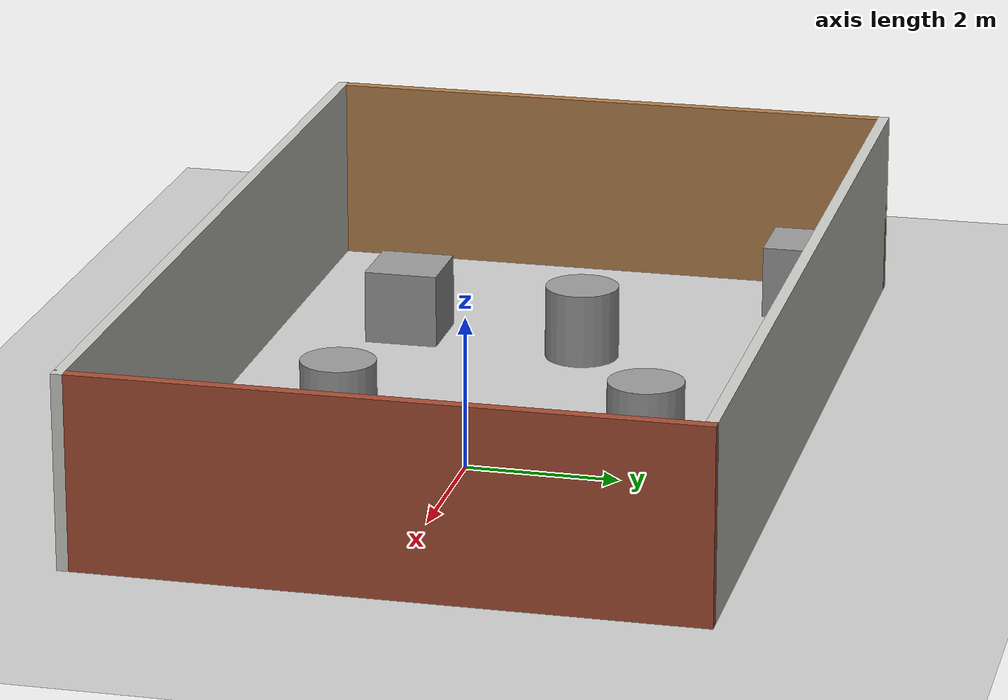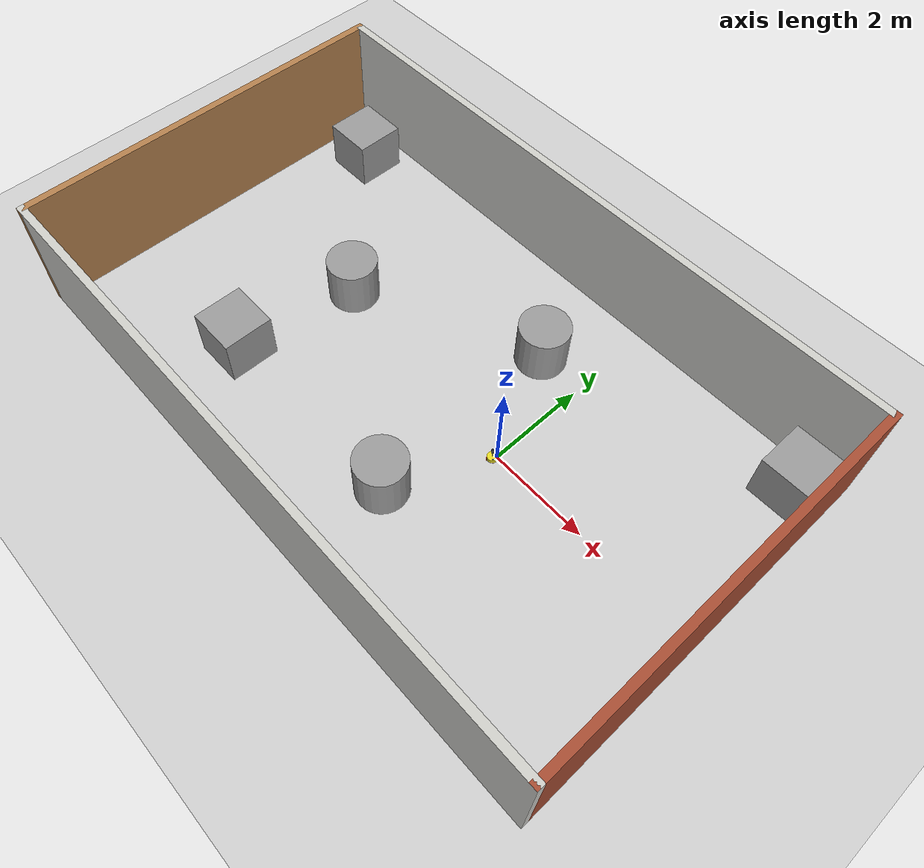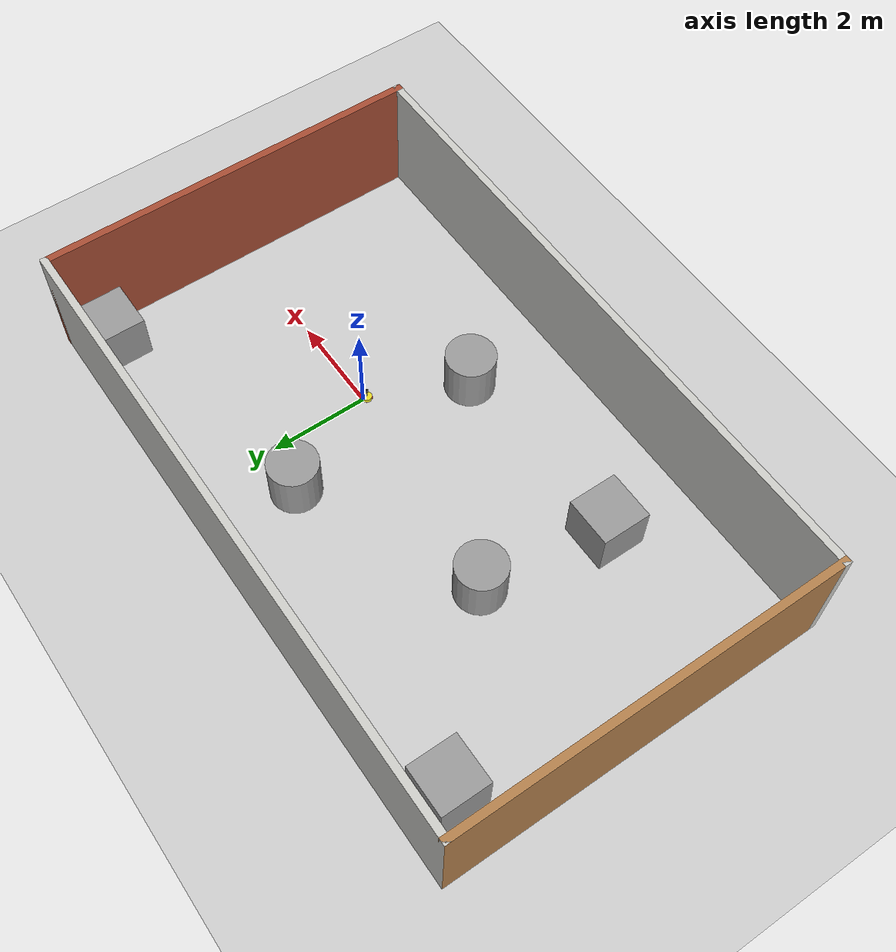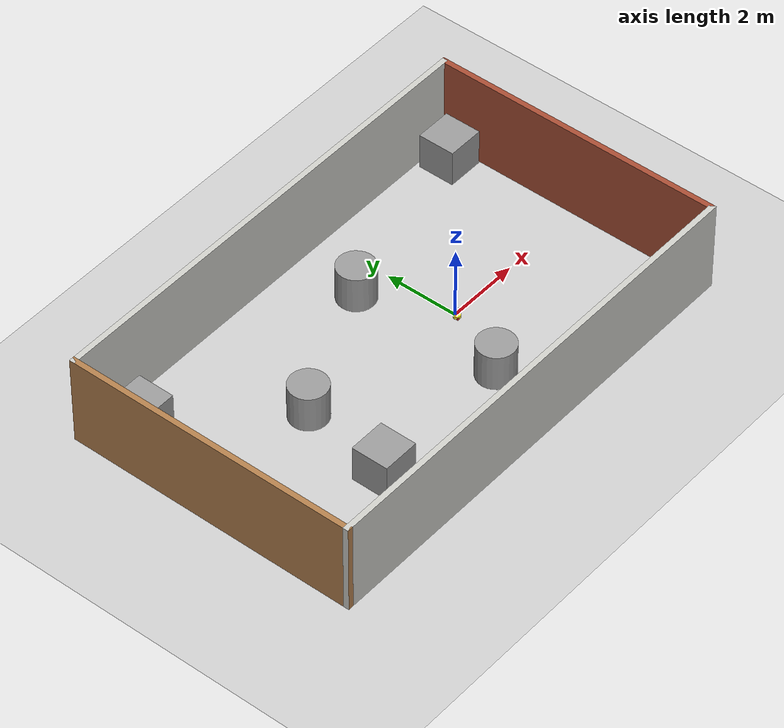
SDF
<sdf version="1.7">
 <world name="default">
  <light name="sun" type="directional">
   <pose>0 0 10 0 -0 0</pose>
   <diffuse>0.8 0.8 0.8 1</diffuse>
   <specular>0.2 0.2 0.2 1</specular>
   <attenuation>
    <range>1000</range>
    <constant>0.9</constant>
    <linear>0.01</linear>
    <quadratic>0.001</quadratic>
   </attenuation>
   <direction>-0.5 0.1 -0.9</direction>
   <spot><inner_angle>0</inner_angle><outer_angle>0</outer_angle><falloff>0</falloff></spot>
  </light>
  <model name="ground_plane">
   <static>1</static>
   <link name="link">
    <collision name="collision">
     <geometry><plane><normal>0 0 1</normal><size>100 100</size></plane></geometry>
     <surface>
      <contact><collide_bitmask>65535</collide_bitmask></contact>
      <friction><ode><mu>100</mu><mu2>50</mu2></ode></friction>
     </surface>
    </collision>
    <visual name="visual">
     <cast_shadows>0</cast_shadows>
     <geometry><plane><normal>0 0 1</normal><size>100 100</size></plane></geometry>
     <material>
      <script><uri>file://media/materials/scripts/gazebo.material</uri><name>Gazebo/Grey</name></script>
     </material>
    </visual>
   </link>
  </model>
  <gravity>0 0 -9.8</gravity>
  <magnetic_field>6e-06 2.3e-05 -4.2e-05</magnetic_field>
  <atmosphere type="adiabatic"/>
  <physics type="ode">
   <max_step_size>0.001</max_step_size>
   <real_time_factor>1</real_time_factor>
   <real_time_update_rate>1000</real_time_update_rate>
  </physics>
  <scene><ambient>0.4 0.4 0.4 1</ambient><background>0.7 0.7 0.7 1</background><shadows>1</shadows></scene>
  <spherical_coordinates>
   <surface_model>EARTH_WGS84</surface_model>
   <latitude_deg>0</latitude_deg>
   <longitude_deg>0</longitude_deg>
   <elevation>0</elevation>
   <heading_deg>0</heading_deg>
  </spherical_coordinates>
  <model name="box_house">
   <pose>-1.97643 0.05996 0 0 -0 0</pose>
   <link name="Wall_1">
    <collision name="Wall_1_Collision">
     <geometry><box><size>13 0.15 2.5</size></box></geometry>
     <pose>0 0 1.25 0 -0 0</pose>
    </collision>
    <visual name="Wall_1_Visual">
     <pose>0 0 1.25 0 -0 0</pose>
     <geometry><box><size>13 0.15 2.5</size></box></geometry>
     <material>
      <script><uri>file://media/materials/scripts/gazebo.material</uri><name>Gazebo/CeilingTiled</name></script>
      <ambient>1 1 1 1</ambient>
     </material>
     <meta><layer>0</layer></meta>
    </visual>
    <pose>0 3.925 0 0 -0 0</pose>
   </link>
   <link name="Wall_2">
    <collision name="Wall_2_Collision">
     <geometry><box><size>8 0.15 2.5</size></box></geometry>
     <pose>0 0 1.25 0 -0 0</pose>
    </collision>
    <visual name="Wall_2_Visual">
     <pose>0 0 1.25 0 -0 0</pose>
     <geometry><box><size>8 0.15 2.5</size></box></geometry>
     <material>
      <script><uri>file://media/materials/scripts/gazebo.material</uri><name>Gazebo/Bricks</name></script>
      <ambient>1 1 1 1</ambient>
     </material>
     <meta><layer>0</layer></meta>
    </visual>
    <pose>6.425 -0 0 0 -0 -1.5708</pose>
   </link>
   <link name="Wall_3">
    <collision name="Wall_3_Collision">
     <geometry><box><size>13 0.15 2.5</size></box></geometry>
     <pose>0 0 1.25 0 -0 0</pose>
    </collision>
    <visual name="Wall_3_Visual">
     <pose>0 0 1.25 0 -0 0</pose>
     <geometry><box><size>13 0.15 2.5</size></box></geometry>
     <material>
      <script><uri>file://media/materials/scripts/gazebo.material</uri><name>Gazebo/CeilingTiled</name></script>
      <ambient>1 1 1 1</ambient>
     </material>
     <meta><layer>0</layer></meta>
    </visual>
    <pose>0 -3.925 0 0 -0 3.14159</pose>
   </link>
   <link name="Wall_4">
    <collision name="Wall_4_Collision">
     <geometry><box><size>8 0.15 2.5</size></box></geometry>
     <pose>0 0 1.25 0 -0 0</pose>
    </collision>
    <visual name="Wall_4_Visual">
     <pose>0 0 1.25 0 -0 0</pose>
     <geometry><box><size>8 0.15 2.5</size></box></geometry>
     <material>
      <script><uri>file://media/materials/scripts/gazebo.material</uri><name>Gazebo/Wood</name></script>
      <ambient>1 1 1 1</ambient>
     </material>
     <meta><layer>0</layer></meta>
    </visual>
    <pose>-6.425 -0 0 0 -0 1.5708</pose>
   </link>
   <static>1</static>
  </model>
  <model name="unit_box">
   <pose>-7.27142 3.09748 0.5 0 -0 0</pose>
   <link name="link">
    <inertial>
     <mass>1</mass>
     <inertia>
      <ixx>0.166667</ixx>
      <ixy>0</ixy>
      <ixz>0</ixz>
      <iyy>0.166667</iyy>
      <iyz>0</iyz>
      <izz>0.166667</izz>
     </inertia>
    </inertial>
    <collision name="collision"><geometry><box><size>1 1 1</size></box></geometry></collision>
    <visual name="visual">
     <geometry><box><size>1 1 1</size></box></geometry>
     <material>
      <script><name>Gazebo/Grey</name><uri>file://media/materials/scripts/gazebo.material</uri></script>
     </material>
    </visual>
   </link>
  </model>
  <model name="unit_cylinder">
   <pose>-4.57746 0.509887 0.499992 -3e-06 4e-06 0</pose>
   <link name="link">
    <inertial>
     <mass>1</mass>
     <inertia><ixx>0.145833</ixx><ixy>0</ixy><ixz>0</ixz><iyy>0.145833</iyy><iyz>0</iyz><izz>0.125</izz></inertia>
    </inertial>
    <collision name="collision">
     <geometry><cylinder><radius>0.5</radius><length>1</length></cylinder></geometry>
    </collision>
    <visual name="visual">
     <geometry><cylinder><radius>0.5</radius><length>1</length></cylinder></geometry>
     <material>
      <script><name>Gazebo/Grey</name><uri>file://media/materials/scripts/gazebo.material</uri></script>
     </material>
    </visual>
   </link>
  </model>
  <model name="unit_box_0">
   <pose>-4.96407 -2.00353 0.5 0 -0 0</pose>
   <link name="link">
    <inertial>
     <mass>1</mass>
     <inertia>
      <ixx>0.166667</ixx>
      <ixy>0</ixy>
      <ixz>0</ixz>
      <iyy>0.166667</iyy>
      <iyz>0</iyz>
      <izz>0.166667</izz>
     </inertia>
    </inertial>
    <collision name="collision"><geometry><box><size>1 1 1</size></box></geometry></collision>
    <visual name="visual">
     <geometry><box><size>1 1 1</size></box></geometry>
     <material>
      <script><name>Gazebo/Grey</name><uri>file://media/materials/scripts/gazebo.material</uri></script>
     </material>
    </visual>
   </link>
  </model>
  <model name="unit_box_1">
   <pose>3.83311 3.3034 0.5 0 -0 0</pose>
   <link name="link">
    <inertial>
     <mass>1</mass>
     <inertia>
      <ixx>0.166667</ixx>
      <ixy>0</ixy>
      <ixz>0</ixz>
      <iyy>0.166667</iyy>
      <iyz>0</iyz>
      <izz>0.166667</izz>
     </inertia>
    </inertial>
    <collision name="collision"><geometry><box><size>1 1 1</size></box></geometry></collision>
    <visual name="visual">
     <geometry><box><size>1 1 1</size></box></geometry>
     <material>
      <script><name>Gazebo/Grey</name><uri>file://media/materials/scripts/gazebo.material</uri></script>
     </material>
    </visual>
   </link>
  </model>
  <model name="unit_cylinder_0">
   <pose>-0.988146 2.12658 0.499993 -3e-06 -4e-06 -0</pose>
   <link name="link">
    <inertial>
     <mass>1</mass>
     <inertia><ixx>0.145833</ixx><ixy>0</ixy><ixz>0</ixz><iyy>0.145833</iyy><iyz>0</iyz><izz>0.125</izz></inertia>
    </inertial>
    <collision name="collision">
     <geometry><cylinder><radius>0.5</radius><length>1</length></cylinder></geometry>
    </collision>
    <visual name="visual">
     <geometry><cylinder><radius>0.5</radius><length>1</length></cylinder></geometry>
     <material>
      <script><name>Gazebo/Grey</name><uri>file://media/materials/scripts/gazebo.material</uri></script>
     </material>
    </visual>
   </link>
  </model>
  <model name="unit_cylinder_1">
   <pose>-0.890576 -1.90634 0.499997 3e-06 4e-06 -0</pose>
   <link name="link">
    <inertial>
     <mass>1</mass>
     <inertia><ixx>0.145833</ixx><ixy>0</ixy><ixz>0</ixz><iyy>0.145833</iyy><iyz>0</iyz><izz>0.125</izz></inertia>
    </inertial>
    <collision name="collision">
     <geometry><cylinder><radius>0.5</radius><length>1</length></cylinder></geometry>
    </collision>
    <visual name="visual">
     <geometry><cylinder><radius>0.5</radius><length>1</length></cylinder></geometry>
     <material>
      <script><name>Gazebo/Grey</name><uri>file://media/materials/scripts/gazebo.material</uri></script>
     </material>
    </visual>
   </link>
  </model>
  <model name="mycar">
   <link name="base_footprint">
    <inertial>
     <pose>0.000354 0 0.074591 0 -0 0</pose>
     <mass>2.26</mass>
     <inertia>
      <ixx>0.0137387</ixx>
      <ixy>0</ixy>
      <ixz>-2.63274e-05</ixz>
      <iyy>0.0138024</iyy>
      <iyz>0</iyz>
      <izz>0.0101373</izz>
     </inertia>
    </inertial>
    <collision name="base_footprint_fixed_joint_lump__base_link_collision">
     <pose>0 0 0.055 0 -0 0</pose>
     <geometry><cylinder><length>0.08</length><radius>0.1</radius></cylinder></geometry>
    </collision>
    <collision name="base_footprint_fixed_joint_lump__camera_collision_1">
     <pose>0.08 0 0.1075 0 -0 0</pose>
     <geometry><box><size>0.01 0.025 0.025</size></box></geometry>
    </collision>
    <collision name="base_footprint_fixed_joint_lump__support_collision_2">
     <pose>0 0 0.17 0 -0 0</pose>
     <geometry><cylinder><length>0.15</length><radius>0.01</radius></cylinder></geometry>
    </collision>
    <collision name="base_footprint_fixed_joint_lump__laser_collision_3">
     <pose>0 0 0.27 0 -0 0</pose>
     <geometry><cylinder><length>0.05</length><radius>0.03</radius></cylinder></geometry>
    </collision>
    <visual name="base_footprint_visual"><geometry><sphere><radius>0.001</radius></sphere></geometry></visual>
    <visual name="base_footprint_fixed_joint_lump__base_link_visual_1">
     <pose>0 0 0.055 0 -0 0</pose>
     <geometry><cylinder><length>0.08</length><radius>0.1</radius></cylinder></geometry>
     <material>
      <script><name>Gazebo/Yellow</name><uri>file://media/materials/scripts/gazebo.material</uri></script>
     </material>
    </visual>
    <visual name="base_footprint_fixed_joint_lump__camera_visual_2">
     <pose>0.08 0 0.1075 0 -0 0</pose>
     <geometry><box><size>0.01 0.025 0.025</size></box></geometry>
     <material>
      <script><name>Gazebo/Blue</name><uri>file://media/materials/scripts/gazebo.material</uri></script>
     </material>
    </visual>
    <visual name="base_footprint_fixed_joint_lump__support_visual_3">
     <pose>0 0 0.17 0 -0 0</pose>
     <geometry><cylinder><length>0.15</length><radius>0.01</radius></cylinder></geometry>
     <material>
      <script><name>Gazebo/Gray</name><uri>file://media/materials/scripts/gazebo.material</uri></script>
     </material>
    </visual>
    <visual name="base_footprint_fixed_joint_lump__laser_visual_4">
     <pose>0 0 0.27 0 -0 0</pose>
     <geometry><cylinder><length>0.05</length><radius>0.03</radius></cylinder></geometry>
     <material>
      <script><name>Gazebo/Black</name><uri>file://media/materials/scripts/gazebo.material</uri></script>
     </material>
    </visual>
   </link>
   <joint name="back_wheel2base_link" type="revolute">
    <pose relative_to="base_footprint">-0.0925 0 0.0075 0 -0 0</pose>
    <parent>base_footprint</parent>
    <child>back_wheel</child>
    <axis>
     <xyz>1 1 1</xyz>
     <limit><lower>-1e+16</lower><upper>1e+16</upper></limit>
     <dynamics><spring_reference>0</spring_reference><spring_stiffness>0</spring_stiffness></dynamics>
    </axis>
   </joint>
   <link name="back_wheel">
    <pose relative_to="back_wheel2base_link">0 0 0 0 -0 0</pose>
    <inertial>
     <mass>0.03</mass>
     <inertia>
      <ixx>6.75e-07</ixx>
      <ixy>0</ixy>
      <ixz>0</ixz>
      <iyy>6.75e-07</iyy>
      <iyz>0</iyz>
      <izz>6.75e-07</izz>
     </inertia>
    </inertial>
    <collision name="back_wheel_collision">
     <geometry><sphere><radius>0.0075</radius></sphere></geometry>
    </collision>
    <visual name="back_wheel_visual">
     <geometry><sphere><radius>0.0075</radius></sphere></geometry>
     <material>
      <script><name>Gazebo/Red</name><uri>file://media/materials/scripts/gazebo.material</uri></script>
     </material>
    </visual>
   </link>
   <joint name="base_l_wheel_joint" type="revolute">
    <pose relative_to="base_footprint">0 0.1 0.0325 0 -0 0</pose>
    <parent>base_footprint</parent>
    <child>base_l_wheel_link</child>
    <axis>
     <xyz>0 1 0</xyz>
     <limit><lower>-1e+16</lower><upper>1e+16</upper></limit>
     <dynamics><spring_reference>0</spring_reference><spring_stiffness>0</spring_stiffness></dynamics>
    </axis>
   </joint>
   <link name="base_l_wheel_link">
    <pose relative_to="base_l_wheel_joint">0 0 0 0 -0 0</pose>
    <inertial>
     <mass>0.05</mass>
     <inertia>
      <ixx>1.41406e-05</ixx>
      <ixy>0</ixy>
      <ixz>0</ixz>
      <iyy>1.41406e-05</iyy>
      <iyz>0</iyz>
      <izz>2.64063e-05</izz>
     </inertia>
    </inertial>
    <collision name="base_l_wheel_link_collision">
     <pose>0 0 0 1.5705 -0 0</pose>
     <geometry><cylinder><length>0.015</length><radius>0.0325</radius></cylinder></geometry>
    </collision>
    <visual name="base_l_wheel_link_visual">
     <pose>0 0 0 1.5705 -0 0</pose>
     <geometry><cylinder><length>0.015</length><radius>0.0325</radius></cylinder></geometry>
     <material>
      <script><name>Gazebo/Red</name><uri>file://media/materials/scripts/gazebo.material</uri></script>
     </material>
    </visual>
   </link>
   <joint name="base_r_wheel_joint" type="revolute">
    <pose relative_to="base_footprint">0 -0.1 0.0325 0 -0 0</pose>
    <parent>base_footprint</parent>
    <child>base_r_wheel_link</child>
    <axis>
     <xyz>0 1 0</xyz>
     <limit><lower>-1e+16</lower><upper>1e+16</upper></limit>
     <dynamics><spring_reference>0</spring_reference><spring_stiffness>0</spring_stiffness></dynamics>
    </axis>
   </joint>
   <link name="base_r_wheel_link">
    <pose relative_to="base_r_wheel_joint">0 0 0 0 -0 0</pose>
    <inertial>
     <mass>0.05</mass>
     <inertia>
      <ixx>1.41406e-05</ixx>
      <ixy>0</ixy>
      <ixz>0</ixz>
      <iyy>1.41406e-05</iyy>
      <iyz>0</iyz>
      <izz>2.64063e-05</izz>
     </inertia>
    </inertial>
    <collision name="base_r_wheel_link_collision">
     <pose>0 0 0 1.5705 -0 0</pose>
     <geometry><cylinder><length>0.015</length><radius>0.0325</radius></cylinder></geometry>
    </collision>
    <visual name="base_r_wheel_link_visual">
     <pose>0 0 0 1.5705 -0 0</pose>
     <geometry><cylinder><length>0.015</length><radius>0.0325</radius></cylinder></geometry>
     <material>
      <script><name>Gazebo/Red</name><uri>file://media/materials/scripts/gazebo.material</uri></script>
     </material>
    </visual>
   </link>
   <joint name="front_wheel2base_link" type="revolute">
    <pose relative_to="base_footprint">0.0925 0 0.0075 0 -0 0</pose>
    <parent>base_footprint</parent>
    <child>front_wheel</child>
    <axis>
     <xyz>1 1 1</xyz>
     <limit><lower>-1e+16</lower><upper>1e+16</upper></limit>
     <dynamics><spring_reference>0</spring_reference><spring_stiffness>0</spring_stiffness></dynamics>
    </axis>
   </joint>
   <link name="front_wheel">
    <pose relative_to="front_wheel2base_link">0 0 0 0 -0 0</pose>
    <inertial>
     <mass>0.03</mass>
     <inertia>
      <ixx>6.75e-07</ixx>
      <ixy>0</ixy>
      <ixz>0</ixz>
      <iyy>6.75e-07</iyy>
      <iyz>0</iyz>
      <izz>6.75e-07</izz>
     </inertia>
    </inertial>
    <collision name="front_wheel_collision">
     <geometry><sphere><radius>0.0075</radius></sphere></geometry>
    </collision>
    <visual name="front_wheel_visual">
     <geometry><sphere><radius>0.0075</radius></sphere></geometry>
     <material>
      <script><name>Gazebo/Red</name><uri>file://media/materials/scripts/gazebo.material</uri></script>
     </material>
    </visual>
   </link>
   <pose>-0.032935 -0.080254 -0 -8e-06 -1e-06 -0.596137</pose>
  </model>
 </world>
</sdf>
